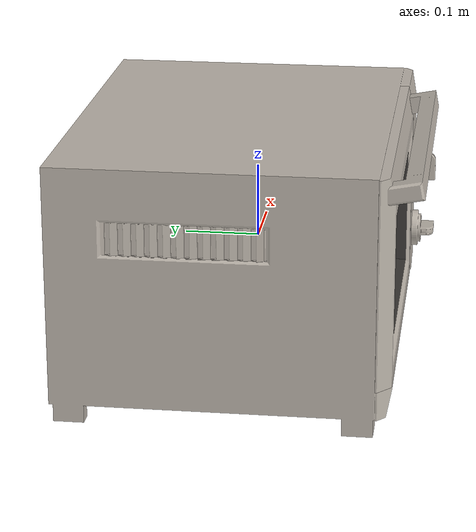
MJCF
<?xml version='1.0' encoding='UTF-8'?>
<mujoco model="model">
  <option timestep="0.002" gravity="0.0 0.0 -9.81"/>
  <compiler angle="radian"/>
  <asset>
    <mesh file="visuals/door.obj" name="door_vis"/>
    <mesh file="visuals/knob_temp.obj" name="knob_temp_vis"/>
    <mesh file="visuals/knob_time.obj" name="knob_time_vis"/>
    <mesh file="visuals/rack0.obj" name="rack0_vis"/>
    <mesh file="visuals/Body001.obj" name="Body001_vis"/>
    <mesh file="visuals/window.obj" name="window_vis"/>
    <texture file="visuals/T_BC001.png" name="Body001_material" type="2d"/>
    <material name="Body001_material" rgba="1 1 1 1.0" texture="Body001_material" shininess="0.1" specular="4"/>
    <texture file="visuals/T_BC001.png" name="door_material" type="2d"/>
    <material name="door_material" rgba="1 1 1 1.0" texture="door_material" shininess="0.1" specular="4"/>
    <material name="window_material" rgba="0.08873672038316727 0.08873672038316727 0.08873672038316727 0.699999988079071" shininess="0.141421377658844" specular="0.3103448502657381"/>
    <texture file="visuals/T_BC001.png" name="knob_temp_material" type="2d"/>
    <material name="knob_temp_material" rgba="1 1 1 1.0" texture="knob_temp_material" shininess="0.1" specular="4"/>
    <texture file="visuals/T_BC001.png" name="knob_time_material" type="2d"/>
    <material name="knob_time_material" rgba="1 1 1 1.0" texture="knob_time_material" shininess="0.1" specular="4"/>
    <texture file="visuals/T_BC001.png" name="rack0_material" type="2d"/>
    <material name="rack0_material" rgba="1 1 1 1.0" texture="rack0_material" shininess="0.1" specular="4"/>
  </asset>
  <default>
    <default class="visual">
      <geom conaffinity="0" contype="0" group="1" type="mesh"/>
    </default>
    <default class="collision">
      <geom group="0" rgba="0.5 0 0 0.5"/>
    </default>
    <default class="spawn">
      <geom group="0" rgba="1 1 1 0.5" contype="0" conaffinity="0"/>
      <site group="0" rgba="1 1 1 0.5"/>
    </default>
    <default class="region">
      <geom group="1" conaffinity="0" contype="0" rgba="0 1 0 0"/>
    </default>
  </default>
  <worldbody>
    <body>
      <body name="object">
        <geom mesh="Body001_vis" type="mesh" solimp="0.998 0.998 0.001" solref="0.001 1" friction="0.95 0.3 0.1" class="visual" material="Body001_material"/>
        <geom type="box" pos="-0.19915375113487244 0.023692751303315163 0.019506996497511864" size="0.01134636253118515 0.13945986330509186 0.09349346905946732" quat="1.0 0.0 0.0 0.0" class="collision"/>
        <geom type="box" pos="-0.023264974355697632 0.023692751303315163 -0.07780774682760239" size="0.16671471297740936 0.13945895433425903 0.011364622972905636" quat="1.0 0.0 0.0 0.0" class="collision"/>
        <geom type="box" pos="-0.03292854130268097 0.16241781413555145 0.021472088992595673" size="0.1775723546743393 0.002849917858839035 0.09152837097644806" quat="1.0 0.0 0.0 0.0" class="collision"/>
        <geom type="box" pos="0.1396062970161438 0.023692751303315163 0.019507044926285744" size="0.011800045147538185 0.13945969939231873 0.09349343180656433" quat="1.0 0.0 0.0 0.0" class="collision"/>
        <geom type="box" pos="-0.03292854130268097 0.023692751303315163 0.10178637504577637" size="0.17757223546504974 0.13945963978767395 0.011213717982172966" quat="1.0 0.0 0.0 0.0" class="collision"/>
        <geom type="box" pos="-0.030011050403118134 0.17500577867031097 0.008379187434911728" size="0.11408746987581253 0.009935717098414898 0.06044715642929077" quat="1.0 0.0 0.0 0.0" class="collision"/>
        <geom type="box" pos="0.17786118388175964 0.01931707188487053 2.6345707837549526e-08" size="0.032639019191265106 0.143835186958313 0.11300036311149597" quat="1.0 0.0 0.0 0.0" class="collision"/>
        <geom type="box" pos="-0.032928597182035446 -0.12176620215177536 -0.09873336553573608" size="0.1775721311569214 0.008292383514344692 0.014266709797084332" quat="1.0 0.0 0.0 0.0" class="collision"/>
        <geom type="box" pos="-0.1976035237312317 0.025271344929933548 -0.09316490590572357" size="0.012896561995148659 0.138315811753273 0.019835161045193672" quat="1.0 0.0 0.0 0.0" class="collision"/>
        <geom type="box" pos="0.1369469165802002 0.025271344929933548 -0.09357748925685883" size="0.009070739150047302 0.13831554353237152 0.01942254789173603" quat="1.0 0.0 0.0 0.0" class="collision"/>
        <geom type="box" pos="-0.186309814453125 0.023692749440670013 0.02976948767900467" size="0.004095414653420448 0.11066891252994537 0.013503777794539928" quat="1.0 0.0 0.0 0.0" class="collision"/>
        <geom type="box" pos="-0.186309814453125 0.023692749440670013 -0.010365255177021027" size="0.004095414653420448 0.11066892743110657 0.013503780588507652" quat="1.0 0.0 0.0 0.0" class="collision"/>
        <geom type="box" pos="0.12682807445526123 0.023692749440670013 0.02976948767900467" size="0.004095414653420448 0.11066894978284836 0.013503783382475376" quat="1.0 0.0 0.0 0.0" class="collision"/>
        <geom type="box" pos="0.12682807445526123 0.023692749440670013 -0.010365255177021027" size="0.004095414653420448 0.11066896468400955 0.0135037861764431" quat="1.0 0.0 0.0 0.0" class="collision"/>
        <body name="door">
          <joint axis="1.0 0.0 0.0" pos="-0.034499987959861755 -0.1284104287624359 -0.08070763945579529" limited="true" name="door_joint" range="0.0 1.4307963267948966" type="hinge" damping="1" frictionloss="1" armature=".01" stiffness="0.05" springref="-3"/>
          <geom mesh="door_vis" type="mesh" solimp="0.998 0.998 0.001" solref="0.001 1" friction="0.95 0.3 0.1" class="visual" material="door_material"/>
          <geom type="box" pos="-0.1616303026676178 -0.15656162798404694 0.09874646365642548" size="0.010255392640829086 0.02860903926193714 0.012028321623802185" quat="1.0 0.0 0.0 0.0" class="collision"/>
          <geom type="box" pos="0.09226434677839279 -0.15656162798404694 0.09874646365642548" size="0.010255392640829086 0.028609031811356544 0.012028317898511887" quat="1.0 0.0 0.0 0.0" class="collision"/>
          <geom class="collision" type="cylinder" pos="-0.03468139097094536 -0.17494115233421326 0.09922613203525543" size="0.008183791302144527 0.11429895460605621" quat="0.7071068286895752 0.0 -0.7071067690849304 0.0" name="door_handle_main"/>
          <geom class="collision" type="box" pos="-0.03427824005484581 -0.12261099368333817 0.01597590744495392" size="0.17340099811553955 0.003546656109392643 0.09479881078004837" quat="1.0 0.0 0.0 0.0" name="door_main"/>
          <body name="window">
            <geom mesh="window_vis" type="mesh" solimp="0.998 0.998 0.001" solref="0.001 1" friction="0.95 0.3 0.1" class="visual" material="window_material"/>
          </body>
        </body>
        <body name="knob_temp">
          <joint axis="0.0 1.0 0.0" pos="0.17749997973442078 -0.13413533568382263 -0.03509907424449921" limited="true" name="knob_temp_joint" range="0.0 4.537856055185257" type="hinge" damping="0.05" frictionloss="0.75" armature="1"/>
          <geom mesh="knob_temp_vis" type="mesh" solimp="0.998 0.998 0.001" solref="0.001 1" friction="0.95 0.3 0.1" class="visual" material="knob_temp_material"/>
          <geom type="cylinder" pos="0.17749997973442078 -0.13024592399597168 -0.03509907424449921" size="0.014455029740929604 0.003352796658873558" quat="0.7071068286895752 0.7071067690849304 0.0 0.0" class="collision" friction="100 0.5 0.01"/>
          <geom class="collision" type="box" pos="0.17749997973442078 -0.13762956857681274 -0.03509907424449921" size="0.0028757485561072826 0.004862802568823099 0.010511142201721668" quat="1.0 0.0 0.0 0.0" name="knob_temp_main" friction="100 0.5 0.01"/>
        </body>
        <body name="knob_time">
          <joint axis="0.0 1.0 0.0" pos="0.17749997973442078 -0.13410982489585876 0.04776974022388458" limited="true" name="knob_time_joint" range="0.0 5.323254218582705" type="hinge" damping="0.05" frictionloss="0.75" armature="1"/>
          <geom mesh="knob_time_vis" type="mesh" solimp="0.998 0.998 0.001" solref="0.001 1" friction="0.95 0.3 0.1" class="visual" material="knob_time_material"/>
          <geom type="cylinder" pos="0.17749997973442078 -0.13022786378860474 0.04776974022388458" size="0.014455029740929604 0.003352796658873558" quat="0.7071068286895752 0.7071067690849304 0.0 0.0" class="collision" friction="100 0.5 0.01"/>
          <geom class="collision" type="box" pos="0.17749997973442078 -0.1376115083694458 0.04776974022388458" size="0.010511142201721668 0.0048628030344843864 0.002875745762139559" quat="1.0 0.0 0.0 0.0" name="knob_time_main" friction="100 0.5 0.01"/>
        </body>
        <body name="rack0">
          <geom class="region" name="reg_rack0" type="box" pos="-0.029716338962316513 0.027002640068531036 0.04332981340121478" size="0.13080616465210915 0.12689719146490097 0.0471426965193823"/>
          <joint axis="0.0 -1.0 0.0" pos="-0.029804488644003868 0.027116667479276657 0.00047825463116168976" limited="true" name="rack0_joint" range="0.0 0.25" type="slide" damping="1" frictionloss="1" armature=".01" stiffness="0.05"/>
          <geom mesh="rack0_vis" type="mesh" solimp="0.998 0.998 0.001" solref="0.001 1" friction="0.95 0.3 0.1" class="visual" material="rack0_material"/>
          <geom type="box" pos="-0.03072410449385643 0.02707163244485855 -0.006946139968931675" size="0.13582004606723785 0.1287454217672348 0.003292788052931428" quat="1.0 0.0 0.0 0.0" class="collision"/>
          <geom type="box" pos="0.11883842945098877 0.027066843584179878 0.009048592299222946" size="0.007618641015142202 0.12887655198574066 0.002635304583236575" quat="1.0 0.0 0.0 0.0" class="collision"/>
          <geom type="box" pos="0.11046212166547775 0.027066843584179878 0.0004183817654848099" size="0.01061615813523531 0.12887655198574066 0.0026352968998253345" quat="0.8631649017333984 -7.031371040966405e-08 -0.5049221515655518 -4.113108786896191e-08" class="collision"/>
          <geom type="box" pos="-0.16996705532073975 0.02706684172153473 0.00041838083416223526" size="0.01061615813523531 0.12887655198574066 0.0026352968998253345" quat="2.709616353513411e-07 0.8631649017333984 1.5850329759814485e-07 -0.5049221515655518" class="collision"/>
          <geom type="box" pos="-0.17815768718719482 0.02706684172153473 0.009048592299222946" size="0.007618641015142202 0.12887655198574066 0.002635364653542638" quat="1.0 0.0 0.0 0.0" class="collision"/>
        </body>
        <geom class="region" name="reg_int" type="box" pos="-0.029740698635578156 0.023170601576566696 0.011767208576202393" size="0.14847335761785507 0.1366564797461033 0.07870530134439468"/>
        <geom class="region" name="reg_main" type="box" pos="0.0 0.02744145691394806 0.0" size="0.2115000615119934 0.1584999988079071 0.1140000501871109"/>
      </body>
    </body>
  </worldbody>
  <actuator>
    <motor name="door_joint_actuator" joint="door_joint" gear="50"/>
    <motor name="knob_temp_joint_actuator" joint="knob_temp_joint" gear="50"/>
    <motor name="knob_time_joint_actuator" joint="knob_time_joint" gear="50"/>
    <motor name="rack0_joint_actuator" joint="rack0_joint" gear="50"/>
  </actuator>
</mujoco>
